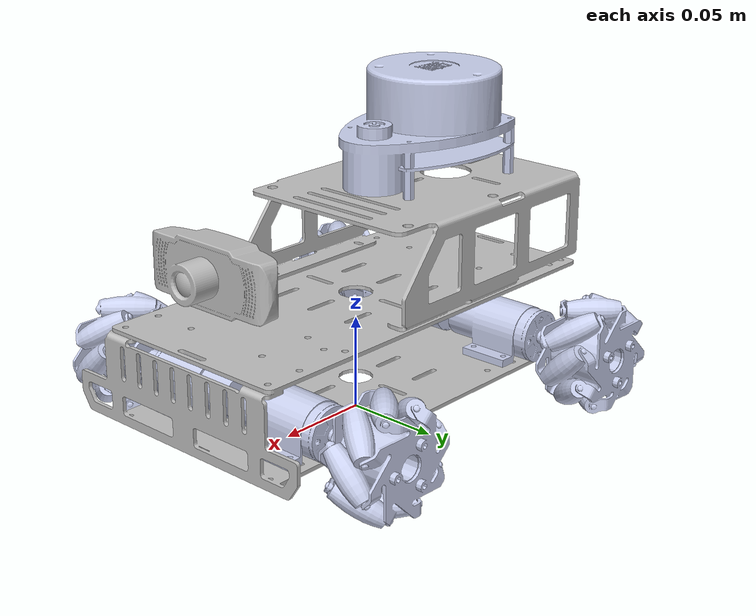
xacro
<?xml version="1.0"?>
<robot name="my_robot" xmlns:xacro="http://www.ros.org/wiki/xacro">

  <xacro:property name="PI" value="3.1415926535897931" />
  <xacro:include filename="$(find my_robot_description)/urdf/materials.xacro" />
  <xacro:include filename="$(find my_robot_description)/urdf/macros.xacro" />

  <link name="base_footprint" />

  <joint name="base_link_joint" type="fixed">
    <parent link="base_footprint" />
    <child link="base_link" />

    <origin xyz="0 0 0.015" rpy="0 0 0" />
  </joint>

  <link name="base_link">
    <inertial>
      <origin xyz="-0.00578 0 0.04236" rpy="0 0 0" />
      <mass value="0.149" />
      <inertia ixx="0.00020" ixy="0" ixz="0" iyy="0.00052" iyz="0" izz="0.00069" />
    </inertial>
    <visual>
      <origin xyz="0 0 0" rpy="0 0 0" />
      <geometry>
        <mesh filename="package://my_robot_description/urdf/meshes/base_link.STL" />
      </geometry>
      <material name="grey"/>
    </visual>
    <collision>
      <origin xyz="0 0 0" rpy="0 0 0" />
      <geometry>
        <mesh filename="package://my_robot_description/urdf/meshes/base_link.STL" />
      </geometry>
    </collision>
  </link>

  <xacro:wheel_assembly prefix="fl" parent="base_link"
                        joint_origin_xyz="0.0775 0.105 0.0147"
                        joint_origin_rpy="${PI/2} 0 0"
                        reflect="-1" />

  <xacro:wheel_assembly prefix="fr" parent="base_link"
                        joint_origin_xyz="0.0754 -0.1045 0.0142"
                        joint_origin_rpy="-${PI/2} 0 0"
                        reflect="1" />

  <xacro:wheel_assembly prefix="rl" parent="base_link"
                        joint_origin_xyz="-0.0825 0.1053 0.0151"
                        joint_origin_rpy="${PI/2} 0 0"
                        reflect="-1" />

  <xacro:wheel_assembly prefix="rr" parent="base_link"
                        joint_origin_xyz="-0.0819 -0.105 0.0143"
                        joint_origin_rpy="-${PI/2} 0 0"
                        reflect="1" />

  <link name="laser_frame">
    <visual>
      <geometry>
        <mesh filename="package://my_robot_description/urdf/meshes/lidar_Link.STL" />
      </geometry>
      <material name="blueish"/>
    </visual>
  </link>
  <joint name="lidar_joint" type="fixed">
    <parent link="base_link"/>
    <child link="laser_frame"/>
    <origin xyz="-0.0611831592797534 -0.00134107032354916 0.127764645969324" rpy="0 0 0"/>
  </joint>

  <link name="webcam_Link">
    <visual>
      <geometry>
        <mesh filename="package://my_robot_description/urdf/meshes/webcam_Link.STL" />
      </geometry>
      <material name="grey"/>
    </visual>
  </link>
  <joint name="webcam_joint" type="fixed">
    <parent link="base_link"/>
    <child link="webcam_Link"/>
    <origin xyz="0.101 -0.001 0.084" rpy="0 0 0"/>
  </joint>

  <xacro:include filename="$(find my_robot_description)/urdf/gazebo_plugins.xacro" />

</robot>

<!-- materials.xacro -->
<robot xmlns:xacro="http://www.ros.org/wiki/xacro">

  <material name="grey">
    <color rgba="0.75 0.75 0.75 1.0"/>
  </material>

  <material name="blueish">
    <color rgba="0.792 0.819 0.933 1.0"/>
  </material>

</robot>

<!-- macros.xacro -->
<robot xmlns:xacro="http://www.ros.org/wiki/xacro">

  <xacro:macro name="wheel_assembly" params="prefix parent joint_origin_xyz joint_origin_rpy reflect">

    <link name="${prefix}_Link">
      <inertial>
        <origin xyz="-0.00076 0 0.072" rpy="0 0 0" />
        <mass value="0.0322" />
        <inertia ixx="8.48e-06" ixy="0" ixz="0" iyy="8.98e-06" iyz="0" izz="3.65e-06" />
      </inertial>
      <visual>
        <origin xyz="0 0 0" rpy="0 0 0" />
        <geometry>
          <mesh filename="package://my_robot_description/urdf/meshes/${prefix}_Link.STL" />
        </geometry>
        <material name="blueish"/>
      </visual>
      <collision>
        <origin xyz="0 0 0" rpy="0 0 0" />
        <geometry>
          <mesh filename="package://my_robot_description/urdf/meshes/${prefix}_Link.STL" />
        </geometry>
      </collision>
    </link>

    <joint name="${prefix}_joint" type="fixed">
      <origin xyz="${joint_origin_xyz}" rpy="${joint_origin_rpy}" />
      <parent link="${parent}" />
      <child link="${prefix}_Link" />
    </joint>

    <link name="wheel_${prefix}_Link">
      <inertial>
        <origin xyz="0 0 0.016" rpy="0 0 0" />
        <mass value="0.0493" />
        <inertia ixx="1.35e-05" ixy="0" ixz="0" iyy="1.35e-05" iyz="0" izz="1.88e-05" />
      </inertial>
      <visual>
        <origin xyz="0 0 0" rpy="0 0 0" />
        <geometry>
          <mesh filename="package://my_robot_description/urdf/meshes/wheel_${prefix}_Link.STL" />
        </geometry>
        <material name="blueish"/>
      </visual>
      <collision>
        <origin xyz="0 0 0" rpy="0 0 0" />
        <geometry>
          <mesh filename="package://my_robot_description/urdf/meshes/wheel_${prefix}_Link.STL" />
        </geometry>
      </collision>
    </link>

    <joint name="wheel_${prefix}_joint" type="continuous">
      <origin xyz="0 0 0" rpy="0 0 0" />
      <parent link="${prefix}_Link" />
      <child link="wheel_${prefix}_Link" />
      <axis xyz="0 0 ${reflect}" />
      </joint>

  </xacro:macro>
</robot>
